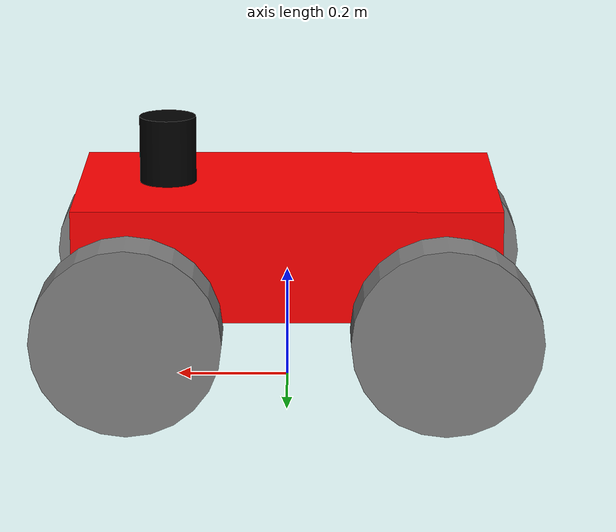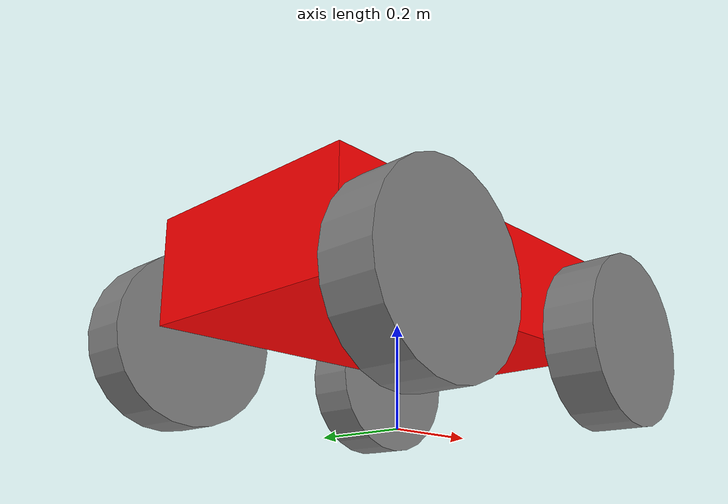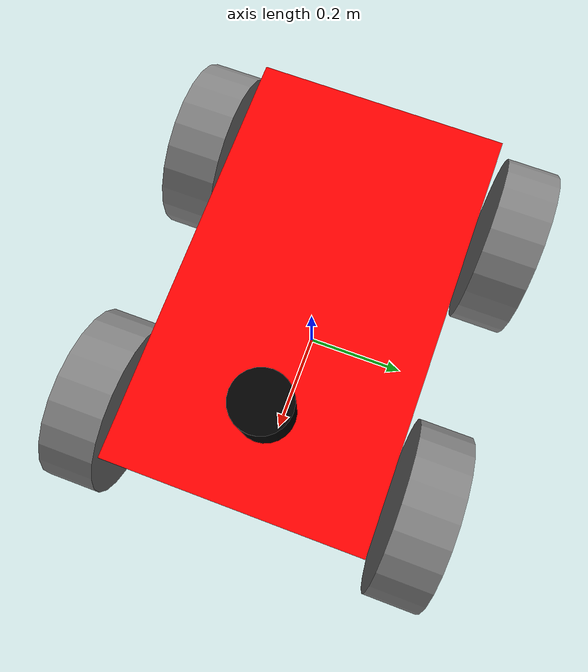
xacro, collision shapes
<?xml version="1.0" ?>
<robot name="bigfootbot" xmlns:xacro="http://ros.org/wiki/xacro">

  <!-- ****************** ROBOT CONSTANTS *******************************  -->
  <!-- Define the size of the robot's main chassis in meters -->
  <xacro:property name="base_width" value="0.45"/>
  <xacro:property name="base_length" value="0.75"/>
  <xacro:property name="base_height" value="0.20"/>

  <!-- Define the shape of the robot's wheels in meters -->
  <xacro:property name="wheel_radius" value="0.165"/>
  <xacro:property name="wheel_width" value="0.1"/>

  <!-- x-axis points forward, y-axis points to left, z-axis points upwards -->
  <!-- Define the gap between the wheel and chassis along y-axis in meters -->
  <xacro:property name="wheel_ygap" value="0.08"/>

  <!-- Position the wheels along the z-axis -->
  <xacro:property name="wheel_zoff" value="0.1"/>

  <!-- Position the wheels along the x-axis -->
  <xacro:property name="wheel_xoff" value="0.275"/>

  <!-- Define intertial property macros  -->
  <xacro:macro name="box_inertia" params="m w h d">
    <inertial>
      <origin xyz="0 0 0" rpy="${pi/2} 0 ${pi/2}"/>
      <mass value="${m}"/>
      <inertia ixx="${(m/12) * (h*h + d*d)}" ixy="0.0" ixz="0.0" iyy="${(m/12) * (w*w + d*d)}" iyz="0.0" izz="${(m/12) * (w*w + h*h)}"/>
    </inertial>
  </xacro:macro>

  <xacro:macro name="cylinder_inertia" params="m r h">
    <inertial>
      <origin xyz="0 0 0" rpy="${pi/2} 0 0" />
      <mass value="${m}"/>
      <inertia ixx="${(m/12) * (3*r*r + h*h)}" ixy = "0" ixz = "0" iyy="${(m/12) * (3*r*r + h*h)}" iyz = "0" izz="${(m/2) * (r*r)}"/>
    </inertial>
  </xacro:macro>

  <!-- ****************** ROBOT BASE FOOTPRINT ***************************  -->
  <!-- Define the center of the main robot chassis projected on the ground -->
  <link name="base_footprint"/>

  <!-- The base footprint of the robot is located underneath the chassis -->
  <joint name="base_joint" type="fixed">
    <parent link="base_footprint"/>
    <child link="base_link" />
    <origin xyz="0.0 0.0 ${(wheel_radius+wheel_zoff)}" rpy="0 0 0"/>
  </joint>

  <!-- ********************** ROBOT BASE *********************************  -->
  <link name="base_link">
    <visual>
      <origin xyz="${base_length/2} ${-base_width/2} ${-base_height/2}" rpy="0 0 1.57079632679"/>
      <geometry>
        <mesh filename="package://bigfootbot_description/meshes/frame_with_covers_2_m.stl"/>
      </geometry>
      <material name="Red">
        <color rgba="${255/255} ${0/255} ${0/255} 1.0"/>
      </material>
    </visual>

    <collision>
      <geometry>
        <box size="${base_length} ${base_width} ${base_height}"/>
      </geometry>
    </collision>

    <xacro:box_inertia m="20.0" w="${base_width}" d="${base_length}" h="${base_height}"/>

  </link>

  <gazebo reference="base_link">
    <material>Gazebo/Red</material>
  </gazebo>

  <!-- *********************** DRIVE WHEELS ******************************  -->

  <xacro:macro name="wheel" params="prefix x_reflect y_reflect rotate_yaw">
    <link name="${prefix}_link">
      <visual>
        <origin xyz="0 0 0" rpy="0 0 ${rotate_yaw}"/>
        <geometry>
            <!--cylinder radius="${wheel_radius}" length="${wheel_width}"/-->
            <mesh filename="package://bigfootbot_description/meshes/wheel.stl" scale="0.001 0.001 0.001"/>
        </geometry>
        <material name="Gray">
          <color rgba="${128/255} ${128/255} ${128/255} 1.0"/>
        </material>
      </visual>

      <collision>
        <origin xyz="0 0 0" rpy="${pi/2} 0 0"/>
        <geometry>
          <cylinder radius="${wheel_radius}" length="${wheel_width}"/>
        </geometry>
      </collision>

      <xacro:cylinder_inertia m="4" r="${wheel_radius}" h="${wheel_width}"/>

    </link>

    <!-- Connect the wheels to the base_link at the appropriate location, and
         define a continuous joint to allow the wheels to freely rotate about
         an axis -->
    <joint name="${prefix}_joint" type="revolute">
      <parent link="base_link"/>
      <child link="${prefix}_link"/>
      <origin xyz="${x_reflect*wheel_xoff} ${y_reflect*(base_width/2+wheel_ygap)} ${-wheel_zoff}" rpy="0 0 0"/>
      <limit upper="3.1415" lower="-3.1415" effort="30" velocity="5.0"/>
      <axis xyz="0 1 0"/>
    </joint>
  </xacro:macro>

  <xacro:wheel prefix="drivewhl_fl" x_reflect="1" y_reflect="1" rotate_yaw="${pi}"/>
  <xacro:wheel prefix="drivewhl_fr" x_reflect="1" y_reflect="-1" rotate_yaw="0"/>
  <xacro:wheel prefix="drivewhl_rl" x_reflect="-1" y_reflect="1" rotate_yaw="${pi}"/>
  <xacro:wheel prefix="drivewhl_rr" x_reflect="-1" y_reflect="-1" rotate_yaw="0"/>

  <!-- *********************** LIDAR SETUP **********************************  -->
  <joint name="lidar_joint" type="fixed">
    <parent link="base_link"/>
    <child link="lidar_link"/>
    <origin xyz="0.215 0 0.13" rpy="0 0 0"/>
  </joint>

  <link name="lidar_link">

    <collision>
     <origin xyz="0 0 0" rpy="0 0 0"/>
     <geometry>
      <cylinder radius="0.0508" length="0.18"/>
     </geometry>
    </collision>

    <visual>
     <origin xyz="0 0 0" rpy="0 0 0"/>
     <geometry>
      <cylinder radius="0.0508" length="0.18"/>
     </geometry>
     <material name="Black">
      <color rgba="${0/255} ${0/255} ${0/255} 1.0"/>
     </material>
    </visual>

    <inertial>
      <mass value="0.114" />
      <origin xyz="0 0 0" rpy="0 0 0"/>
      <inertia ixx="0.001" ixy="0" ixz="0" iyy="0.001" iyz="0" izz="0.001" />
    </inertial>
  </link>
  <!-- END OF BLOCK 'Lidar setup' -->

  <!-- *********************** IMU SETUP *********************************  -->
  <!-- Each sensor must be attached to a link.                              -->

  <joint name="imu_joint" type="fixed">
    <parent link="base_link"/>
    <child link="imu_link"/>
    <origin xyz="-0.10 0 0.05" rpy="0 0 0"/>
  </joint>

  <link name="imu_link"/>

  <!-- *********************** GPS SETUP **********************************  -->

  <!-- *********************** CASTER WHEEL ******************************  -->
  <!-- We add a caster wheel. It will be modeled as sphere.
       We define the wheel’s geometry, material and the joint to connect it to
       base_link at the appropriate location. -->

</robot>
